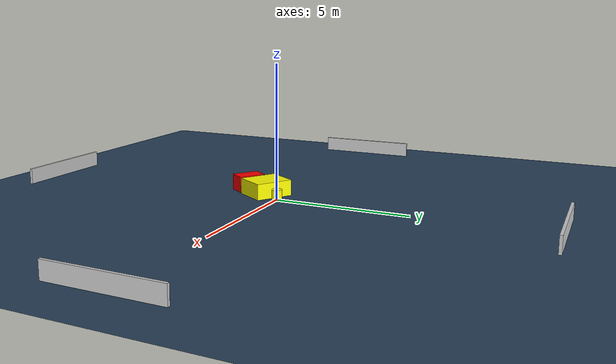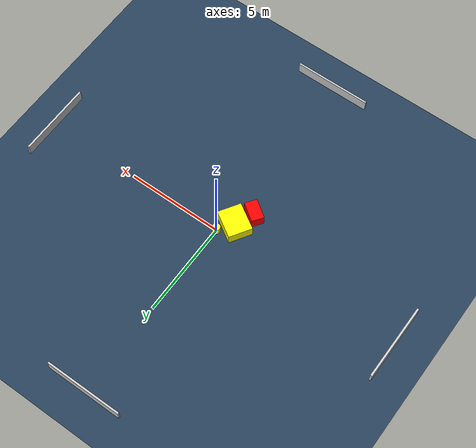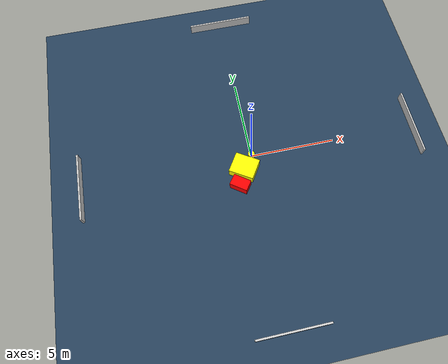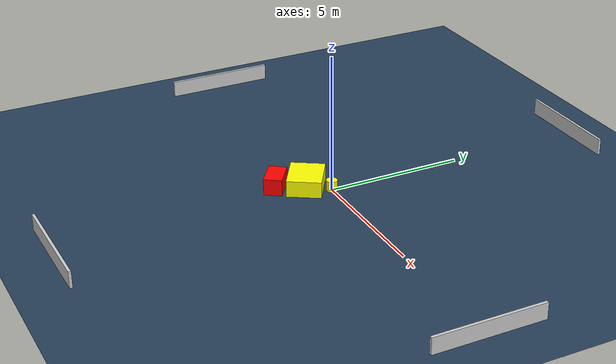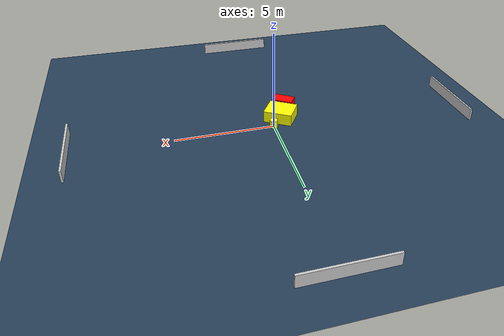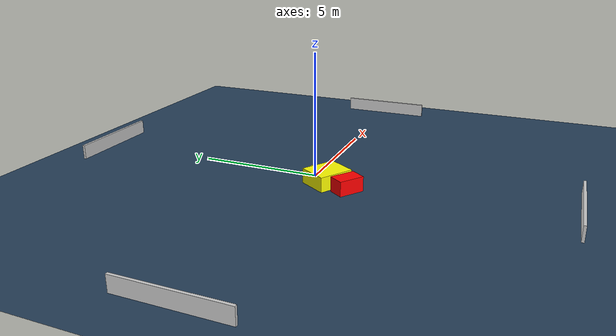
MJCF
<?xml version="1.0" ?>
<mujoco model="generated_environment">
  <option timestep="0.01" integrator="RK4" cone="elliptic"/>
  <default>
    <geom density="1"/>
  </default>
  <asset>
    <texture builtin="gradient" height="3072" name="skybox" rgb1="0.3 0.5 0.7" rgb2="0 0 0" type="skybox" width="512"/>
    <texture builtin="checker" height="300" name="groundplane" rgb1="0.2 0.3 0.4" rgb2="0.1 0.2 0.3" type="2d" width="300"/>
    <material name="groundplane" reflectance="0.2" texrepeat="5 5" texture="groundplane"/>
  </asset>
  <worldbody>
    <light dir="0 0 -1" directional="true" pos="0 0 1.5"/>
    <geom condim="3" friction="0.5 0.005 0.001" material="groundplane" name="floor" pos="0 0 0" size="0 0 0.05" type="plane"/>
    <body name="walls">
      <geom name="wall_1" condim="4" pos="-10.0 0.0 0.3" rgba="0.800000011920929 0.800000011920929 0.800000011920929 1.0" size="0.05 2.0 0.3" type="box"/>
      <geom name="wall_2" condim="4" pos="10.0 0.0 0.3" rgba="0.800000011920929 0.800000011920929 0.800000011920929 1.0" size="0.05 2.0 0.3" type="box"/>
      <geom name="wall_3" condim="4" pos="0.0 -10.0 0.3" rgba="0.800000011920929 0.800000011920929 0.800000011920929 1.0" size="2.0 0.05 0.3" type="box"/>
      <geom name="wall_4" condim="4" pos="0.0 10.0 0.3" rgba="0.800000011920929 0.800000011920929 0.800000011920929 1.0" size="2.0 0.05 0.3" type="box"/>
    </body>
    <body name="robot">
      <joint name="joint_x" type="slide" pos="0 0 0" axis="1 0 0"/>
      <joint name="joint_y" type="slide" pos="0 0 0" axis="0 1 0"/>
      <geom name="robot" type="cylinder" pos="0.0 0.0 0.2" size="0.2 0.2 0.0" mass="5.0" friction="1.0 0.005 0.0001" condim="4" rgba="1.0 1.0 0.0 1.0"/>
    </body>
    <body name="obstacle_1_movable">
      <geom name="obstacle_1_movable" condim="4" pos="-0.5632336685000684 -0.7243416505021087 0.3" euler="0 0 57.8655461767696" friction="0.0 0.005 0.001" rgba="1.0 1.0 0.0 1.0" size="0.6162446946393476 0.7310995253752968 0.3" type="box" mass="0.1"/>
      <joint type="free"/>
    </body>
    <body name="obstacle_2_static">
      <geom name="obstacle_2_static" condim="4" pos="-1.0010745448154352 -1.7009658967009813 0.3" euler="0 0 54.62645184560165" friction="0.0 0.005 0.001" rgba="1.0 0.0 0.0 1.0" size="0.32728613438681586 0.5238979251478888 0.3" type="box"/>
    </body>
  </worldbody>
  <actuator>
    <motor name="actuator_x" joint="joint_x" gear="1" ctrlrange="-1 1"/>
    <motor name="actuator_y" joint="joint_y" gear="1" ctrlrange="-1 1"/>
  </actuator>
</mujoco>
